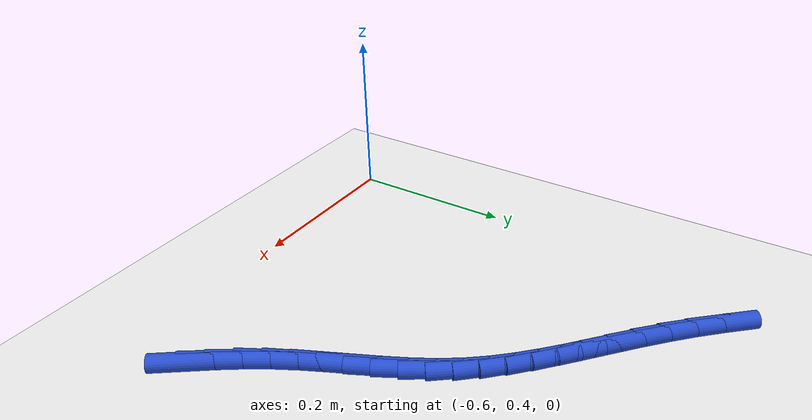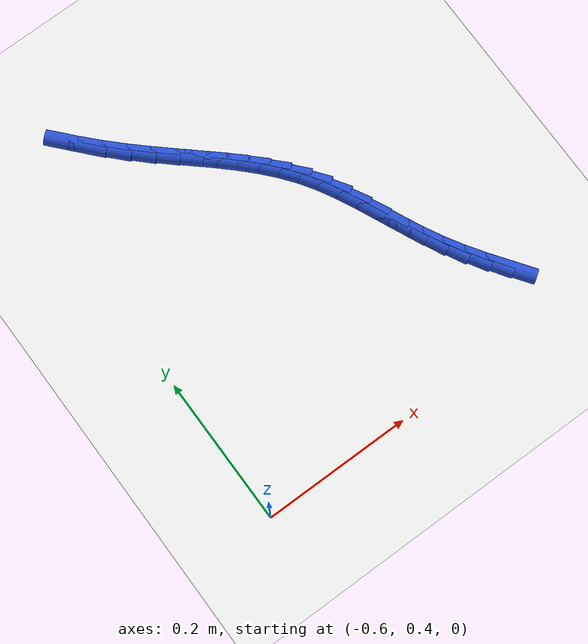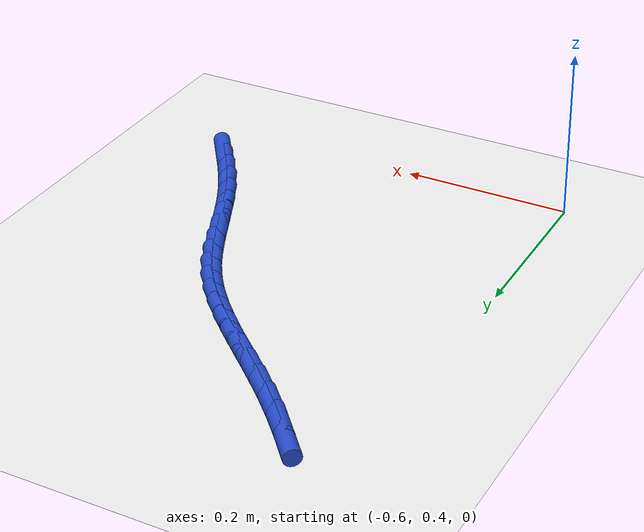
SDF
<sdf version="1.6">
 <world name="default">
  <model name="ground_plane">
   <static>1</static>
   <link name="link">
    <collision name="collision">
     <geometry><plane><normal>0 0 1</normal><size>100 100</size></plane></geometry>
     <surface><friction><ode><mu>100</mu><mu2>50</mu2></ode></friction></surface>
    </collision>
    <visual name="visual">
     <cast_shadows>0</cast_shadows>
     <geometry><plane><normal>0 0 1</normal><size>100 100</size></plane></geometry>
     <material>
      <script><uri>file://media/materials/scripts/gazebo.material</uri><name>Gazebo/WhiteGlow</name></script>
     </material>
    </visual>
   </link>
  </model>
  <model name="line">
   <link name="link_19">
    <pose>-0.1859475026062577 0.47647143609093207 0.01 0 1.57 -0.9516803264550063</pose>
    <collision name="collision">
     <geometry><cylinder><radius>0.01</radius><length>0.08</length></cylinder></geometry>
    </collision>
    <visual name="visual">
     <material>
      <script><name>Gazebo/Blue</name><uri>file://media/materials/scripts/gazebo.material</uri></script>
     </material>
     <geometry><cylinder><radius>0.01</radius><length>0.08</length></cylinder></geometry>
    </visual>
   </link>
   <link name="link_20">
    <pose>-0.20236016088447845 0.49950431162380693 0.01 0 1.57 -0.9879437023587974</pose>
    <collision name="collision">
     <geometry><cylinder><radius>0.01</radius><length>0.08</length></cylinder></geometry>
    </collision>
    <visual name="visual">
     <material>
      <script><name>Gazebo/Blue</name><uri>file://media/materials/scripts/gazebo.material</uri></script>
     </material>
     <geometry><cylinder><radius>0.01</radius><length>0.08</length></cylinder></geometry>
    </visual>
   </link>
   <link name="link_21">
    <pose>-0.21791331145661982 0.5230963862391478 0.01 0 1.57 -1.0344211183286065</pose>
    <collision name="collision">
     <geometry><cylinder><radius>0.01</radius><length>0.08</length></cylinder></geometry>
    </collision>
    <visual name="visual">
     <material>
      <script><name>Gazebo/Blue</name><uri>file://media/materials/scripts/gazebo.material</uri></script>
     </material>
     <geometry><cylinder><radius>0.01</radius><length>0.08</length></cylinder></geometry>
    </visual>
   </link>
   <link name="link_22">
    <pose>-0.23234980577532913 0.5473792751913311 0.01 0 1.57 -1.0879802597897867</pose>
    <collision name="collision">
     <geometry><cylinder><radius>0.01</radius><length>0.08</length></cylinder></geometry>
    </collision>
    <visual name="visual">
     <material>
      <script><name>Gazebo/Blue</name><uri>file://media/materials/scripts/gazebo.material</uri></script>
     </material>
     <geometry><cylinder><radius>0.01</radius><length>0.08</length></cylinder></geometry>
    </visual>
   </link>
   <link name="link_23">
    <pose>-0.24548372207166536 0.5724346563186403 0.01 0 1.57 -1.1280250603066968</pose>
    <collision name="collision">
     <geometry><cylinder><radius>0.01</radius><length>0.08</length></cylinder></geometry>
    </collision>
    <visual name="visual">
     <material>
      <script><name>Gazebo/Blue</name><uri>file://media/materials/scripts/gazebo.material</uri></script>
     </material>
     <geometry><cylinder><radius>0.01</radius><length>0.08</length></cylinder></geometry>
    </visual>
   </link>
   <link name="link_24">
    <pose>-0.25760955429303556 0.5980073858304675 0.01 0 1.57 -1.1463990120088077</pose>
    <collision name="collision">
     <geometry><cylinder><radius>0.01</radius><length>0.08</length></cylinder></geometry>
    </collision>
    <visual name="visual">
     <material>
      <script><name>Gazebo/Blue</name><uri>file://media/materials/scripts/gazebo.material</uri></script>
     </material>
     <geometry><cylinder><radius>0.01</radius><length>0.08</length></cylinder></geometry>
    </visual>
   </link>
   <link name="link_25">
    <pose>-0.26922035310306563 0.6237031109255334 0.01 0 1.57 -1.1430899124916272</pose>
    <collision name="collision">
     <geometry><cylinder><radius>0.01</radius><length>0.08</length></cylinder></geometry>
    </collision>
    <visual name="visual">
     <material>
      <script><name>Gazebo/Blue</name><uri>file://media/materials/scripts/gazebo.material</uri></script>
     </material>
     <geometry><cylinder><radius>0.01</radius><length>0.08</length></cylinder></geometry>
    </visual>
   </link>
   <link name="link_26">
    <pose>-0.2808097977449292 0.6491270381025981 0.01 0 1.57 -1.1174411921694796</pose>
    <collision name="collision">
     <geometry><cylinder><radius>0.01</radius><length>0.08</length></cylinder></geometry>
    </collision>
    <visual name="visual">
     <material>
      <script><name>Gazebo/Blue</name><uri>file://media/materials/scripts/gazebo.material</uri></script>
     </material>
     <geometry><cylinder><radius>0.01</radius><length>0.08</length></cylinder></geometry>
    </visual>
   </link>
   <link name="link_27">
    <pose>-0.29287156746179993 0.6738843738604215 0.01 0 1.57 -1.0681150966436035</pose>
    <collision name="collision">
     <geometry><cylinder><radius>0.01</radius><length>0.08</length></cylinder></geometry>
    </collision>
    <visual name="visual">
     <material>
      <script><name>Gazebo/Blue</name><uri>file://media/materials/scripts/gazebo.material</uri></script>
     </material>
     <geometry><cylinder><radius>0.01</radius><length>0.08</length></cylinder></geometry>
    </visual>
   </link>
   <link name="link_28">
    <pose>-0.3058993414968514 0.6975803246977645 0.01 0 1.57 -0.9942347466215452</pose>
    <collision name="collision">
     <geometry><cylinder><radius>0.01</radius><length>0.08</length></cylinder></geometry>
    </collision>
    <visual name="visual">
     <material>
      <script><name>Gazebo/Blue</name><uri>file://media/materials/scripts/gazebo.material</uri></script>
     </material>
     <geometry><cylinder><radius>0.01</radius><length>0.08</length></cylinder></geometry>
    </visual>
   </link>
   <link name="link_29">
    <pose>-0.32037165580176774 0.7198363456157624 0.01 0 1.57 -0.9131866756456802</pose>
    <collision name="collision">
     <geometry><cylinder><radius>0.01</radius><length>0.08</length></cylinder></geometry>
    </collision>
    <visual name="visual">
     <material>
      <script><name>Gazebo/Blue</name><uri>file://media/materials/scripts/gazebo.material</uri></script>
     </material>
     <geometry><cylinder><radius>0.01</radius><length>0.08</length></cylinder></geometry>
    </visual>
   </link>
   <link name="link_30">
    <pose>-0.33643245734391874 0.7406329000854154 0.01 0 1.57 -0.8446395364521905</pose>
    <collision name="collision">
     <geometry><cylinder><radius>0.01</radius><length>0.08</length></cylinder></geometry>
    </collision>
    <visual name="visual">
     <material>
      <script><name>Gazebo/Blue</name><uri>file://media/materials/scripts/gazebo.material</uri></script>
     </material>
     <geometry><cylinder><radius>0.01</radius><length>0.08</length></cylinder></geometry>
    </visual>
   </link>
   <link name="link_31">
    <pose>-0.3538985463113718 0.7603014746841779 0.01 0 1.57 -0.7910478218169394</pose>
    <collision name="collision">
     <geometry><cylinder><radius>0.01</radius><length>0.08</length></cylinder></geometry>
    </collision>
    <visual name="visual">
     <material>
      <script><name>Gazebo/Blue</name><uri>file://media/materials/scripts/gazebo.material</uri></script>
     </material>
     <geometry><cylinder><radius>0.01</radius><length>0.08</length></cylinder></geometry>
    </visual>
   </link>
   <link name="link_32">
    <pose>-0.3725730682777986 0.7791882071658727 0.01 0 1.57 -0.7530244384197256</pose>
    <collision name="collision">
     <geometry><cylinder><radius>0.01</radius><length>0.08</length></cylinder></geometry>
    </collision>
    <visual name="visual">
     <material>
      <script><name>Gazebo/Blue</name><uri>file://media/materials/scripts/gazebo.material</uri></script>
     </material>
     <geometry><cylinder><radius>0.01</radius><length>0.08</length></cylinder></geometry>
    </visual>
   </link>
   <link name="link_33">
    <pose>-0.39225916881687106 0.7976392352843239 0.01 0 1.57 -0.7304038179022013</pose>
    <collision name="collision">
     <geometry><cylinder><radius>0.01</radius><length>0.08</length></cylinder></geometry>
    </collision>
    <visual name="visual">
     <material>
      <script><name>Gazebo/Blue</name><uri>file://media/materials/scripts/gazebo.material</uri></script>
     </material>
     <geometry><cylinder><radius>0.01</radius><length>0.08</length></cylinder></geometry>
    </visual>
   </link>
   <link name="link_34">
    <pose>-0.4127599935022609 0.8160006967933551 0.01 0 1.57 -0.7225502981332543</pose>
    <collision name="collision">
     <geometry><cylinder><radius>0.01</radius><length>0.08</length></cylinder></geometry>
    </collision>
    <visual name="visual">
     <material>
      <script><name>Gazebo/Blue</name><uri>file://media/materials/scripts/gazebo.material</uri></script>
     </material>
     <geometry><cylinder><radius>0.01</radius><length>0.08</length></cylinder></geometry>
    </visual>
   </link>
   <link name="link_35">
    <pose>-0.43387868790764006 0.8346187294467898 0.01 0 1.57 -0.7285668247678208</pose>
    <collision name="collision">
     <geometry><cylinder><radius>0.01</radius><length>0.08</length></cylinder></geometry>
    </collision>
    <visual name="visual">
     <material>
      <script><name>Gazebo/Blue</name><uri>file://media/materials/scripts/gazebo.material</uri></script>
     </material>
     <geometry><cylinder><radius>0.01</radius><length>0.08</length></cylinder></geometry>
    </visual>
   </link>
   <link name="link_36">
    <pose>-0.45541839760668024 0.8538394709984516 0.01 0 1.57 -0.7473971276510487</pose>
    <collision name="collision">
     <geometry><cylinder><radius>0.01</radius><length>0.08</length></cylinder></geometry>
    </collision>
    <visual name="visual">
     <material>
      <script><name>Gazebo/Blue</name><uri>file://media/materials/scripts/gazebo.material</uri></script>
     </material>
     <geometry><cylinder><radius>0.01</radius><length>0.08</length></cylinder></geometry>
    </visual>
   </link>
   <link name="link_37">
    <pose>-0.4771822681730533 0.8740090592021643 0.01 0 1.57 -0.7778477638726008</pose>
    <collision name="collision">
     <geometry><cylinder><radius>0.01</radius><length>0.08</length></cylinder></geometry>
    </collision>
    <visual name="visual">
     <material>
      <script><name>Gazebo/Blue</name><uri>file://media/materials/scripts/gazebo.material</uri></script>
     </material>
     <geometry><cylinder><radius>0.01</radius><length>0.08</length></cylinder></geometry>
    </visual>
   </link>
   <link name="link_38">
    <pose>-0.4989734451804314 0.8954736318117514 0.01 0 1.57 -0.8150539953276795</pose>
    <collision name="collision">
     <geometry><cylinder><radius>0.01</radius><length>0.08</length></cylinder></geometry>
    </collision>
    <visual name="visual">
     <material>
      <script><name>Gazebo/Blue</name><uri>file://media/materials/scripts/gazebo.material</uri></script>
     </material>
     <geometry><cylinder><radius>0.01</radius><length>0.08</length></cylinder></geometry>
    </visual>
   </link>
   <link name="link_39">
    <pose>-0.5206281834407767 0.9184524020700275 0.01 0 1.57 -0.8412696189431139</pose>
    <collision name="collision">
     <geometry><cylinder><radius>0.01</radius><length>0.08</length></cylinder></geometry>
    </collision>
    <visual name="visual">
     <material>
      <script><name>Gazebo/Blue</name><uri>file://media/materials/scripts/gazebo.material</uri></script>
     </material>
     <geometry><cylinder><radius>0.01</radius><length>0.08</length></cylinder></geometry>
    </visual>
   </link>
  </model>
 </world>
</sdf>
